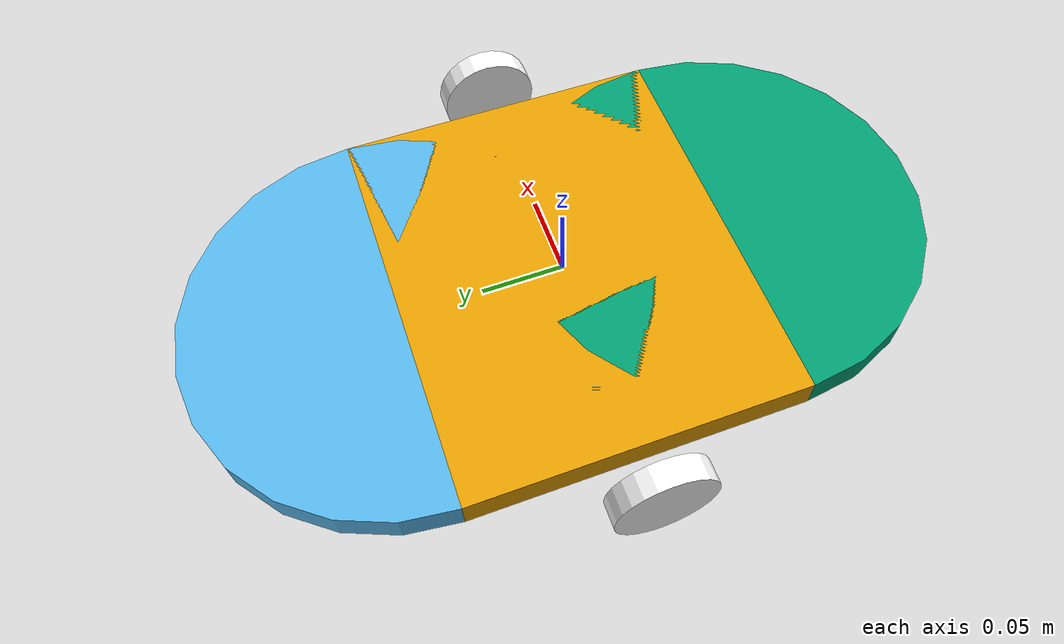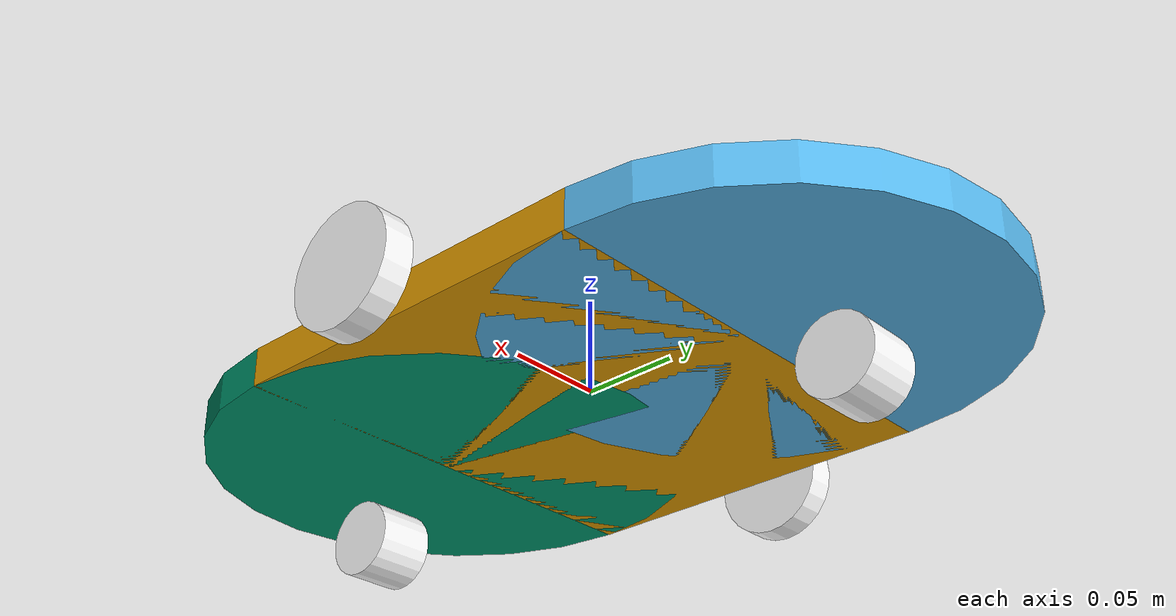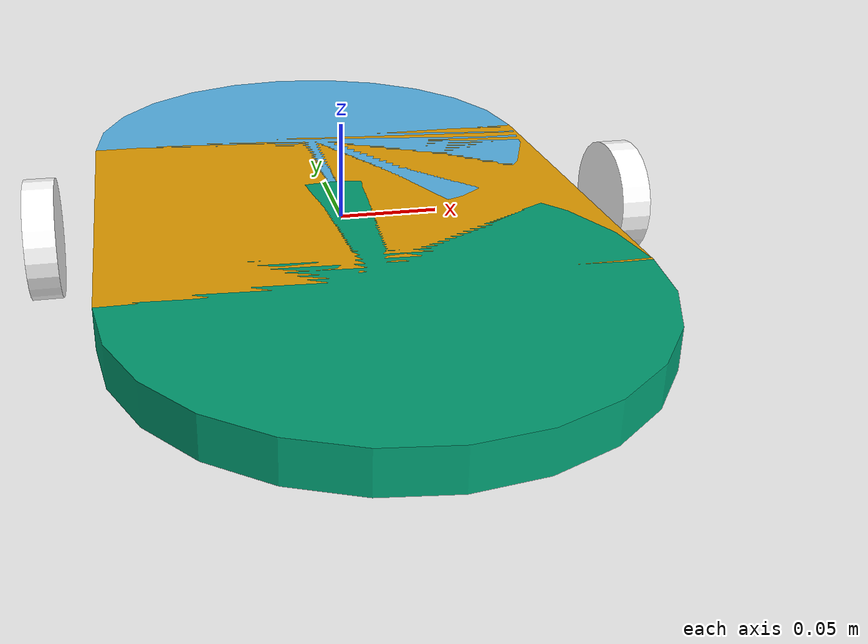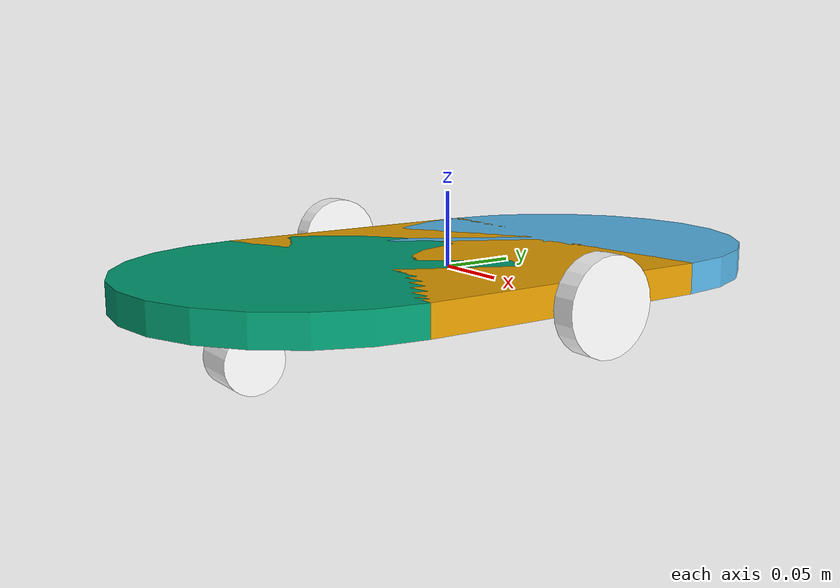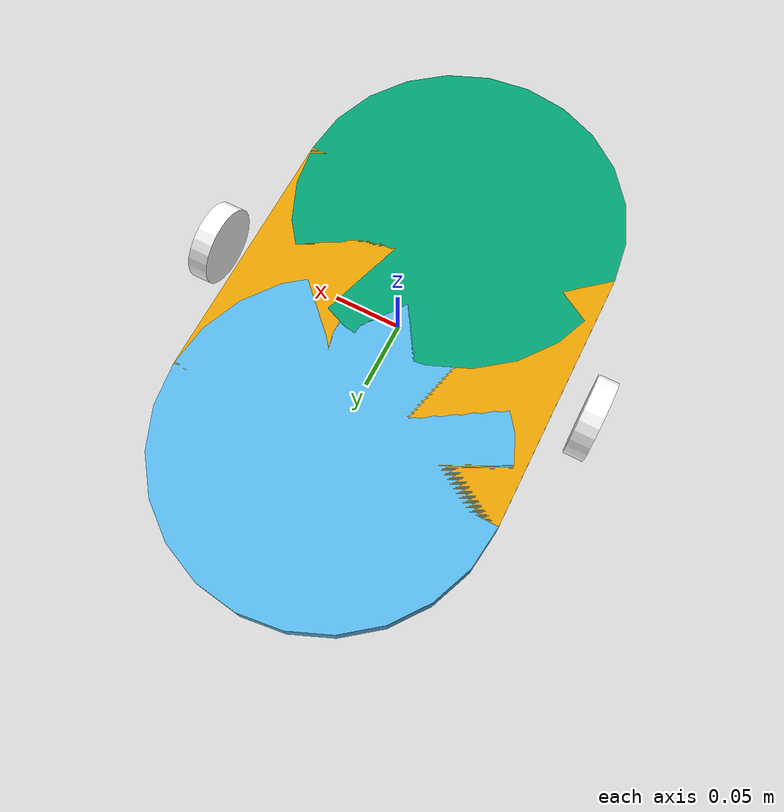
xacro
<?xml version="1.0"?>
<robot name="first_robot" xmlns:xacro="http://ros.org/wiki/xacro">

	<xacro:property name="width" value="0.25"/>
  <xacro:property name="wheelspacing" value="0.3" />
  <xacro:property name="wheelradius" value="0.03" />
  <xacro:property name="wheelwidth" value="0.015" />
  <xacro:property name="smallwheelradius" value="0.02" />
  <xacro:property name="smallwheelwidth" value="0.03" />

  <material name="white">
    <color rgba="1 1 1 1"/>
  </material>

  <xacro:macro name="default_inertial" params="mass">
    <inertial>
      <mass value="${mass}" />
      <inertia ixx="0.1" ixy="0.0" ixz="0.0" iyy="0.1" iyz="0.0" izz="0.1" />
    </inertial>
  </xacro:macro>

  <link name="base_link">
    <visual>
      <geometry>
        <box size="${width} 0.2 0.02"/>
      </geometry>
    </visual>
    <collision>
      <geometry>
        <box size="${width} 0.2 0.02"/>
      </geometry>
    </collision>
    <xacro:default_inertial mass="2" />
  </link>

  <xacro:macro name="base" params="prefix reflect">

    <link name="${prefix}">
      <visual>
        <geometry>
          <cylinder length="0.02" radius="${width/2}"/>
        </geometry>
        <origin rpy="0 0 0" xyz="0 0 0"/>
      </visual>
      <collision>
        <geometry>
          <cylinder length="0.02" radius="${width/2}"/>
        </geometry>
        <origin rpy="0 0 0" xyz="0 0 0"/>
      </collision>
      <xacro:default_inertial mass="0.5" />
    </link>

    <joint name="base_to_${prefix}" type="fixed">
      <parent link="base_link"/>
      <child link="${prefix}"/>
      <origin xyz="0 ${reflect*0.1} 0"/>
    </joint>

  </xacro:macro>

  <xacro:base prefix="avant"  reflect="1"/>
  <xacro:base prefix="arriere"  reflect="-1"/>

  <xacro:macro name="wheel" params="prefix reflect">

    <link name="roue_${prefix}">
      <visual>
        <geometry>
          <cylinder length="${wheelwidth}" radius="${wheelradius}"/>
        </geometry>
        <origin rpy="0 1.5708 0" xyz="0 0 0"/>
        <material name="white"/>
      </visual>
      <collision>
        <geometry>
          <cylinder length="${wheelwidth}" radius="${wheelradius}"/>
        </geometry>
        <origin rpy="0 1.5708 0" xyz="0 0 0"/>
        <material name="white"/>
      </collision>
      <xacro:default_inertial mass="0.5" />
    </link>

    <joint name="base_to_roue_${prefix}" type="continuous">
      <parent link="base_link"/>
      <child link="roue_${prefix}"/>
      <origin xyz="${reflect*wheelspacing/2} 0 0"/>
    </joint>

  <transmission name="${prefix}_wheel_trans">
    <type>transmission_interface/SimpleTransmission</type>
    <actuator name="${prefix}_wheel_motor">
      <hardwareInterface>hardware_interface/VelocityJointInterface</hardwareInterface>
      <mechanicalReduction>1</mechanicalReduction>
    </actuator>
    <joint name="base_to_roue_${prefix}">
      <hardwareInterface>hardware_interface/VelocityJointInterface</hardwareInterface>
    </joint>
  </transmission>

  </xacro:macro>

  <xacro:wheel prefix="droite"  reflect="1"/>
  <xacro:wheel prefix="gauche"  reflect="-1"/>

<!-- AJOUT DE ROUES LIBRE EN AVANT ET EN ARRIERE POUR EVITER LE BASCULEMENT -->
  <xacro:macro name="free-wheel" params="prefix reflect">

    <link name="roue_libre-${prefix}">
      <visual>
        <geometry>
          <cylinder length="${smallwheelwidth}" radius="${smallwheelradius}"/>
        </geometry>
        <origin rpy="0 1.5708 0" xyz="0 0 0"/>
        <material name="white"/>
      </visual>
      <collision>
        <geometry>
          <cylinder length="${smallwheelwidth}" radius="${smallwheelradius}"/>
        </geometry>
        <origin rpy="0 1.5708 0" xyz="0 0 0"/>
        <material name="white"/>
      </collision>
      <xacro:default_inertial mass="0.5" />
    </link>

    <joint name="base_to_roue_libre_${prefix}" type="continuous">
      <parent link="base_link"/>
      <child link="roue_libre-${prefix}"/>
      <origin xyz="0 ${reflect*wheelspacing/2} -0.04"/>
    </joint>

    <transmission name="${prefix}_free_wheel_trans">
      <type>transmission_interface/SimpleTransmission</type>
      <actuator name="${prefix}_free_wheel_motor">
        <hardwareInterface>hardware_interface/PositionJointInterface</hardwareInterface>
        <mechanicalReduction>1</mechanicalReduction>
      </actuator>
      <joint name="base_to_roue_libre_${prefix}">
        <hardwareInterface>hardware_interface/PositionJointInterface</hardwareInterface>
      </joint>
    </transmission>

  </xacro:macro>

  <xacro:free-wheel prefix="avant"  reflect="1"/>
  <xacro:free-wheel prefix="arriere"  reflect="-1"/>

<!-- GAZEBO PLUGIN -->
  <gazebo>
    <plugin name="gazebo_ros_control" filename="libgazebo_ros_control.so">
      <robotNamespace>/</robotNamespace>
    </plugin>
  </gazebo>

</robot>
